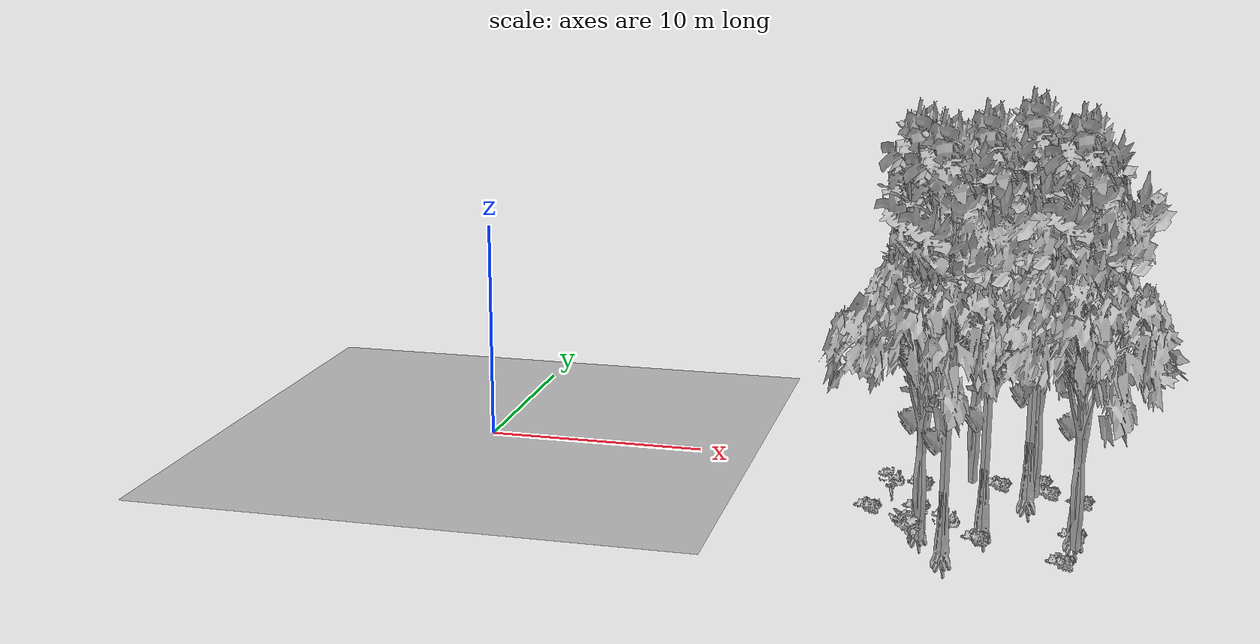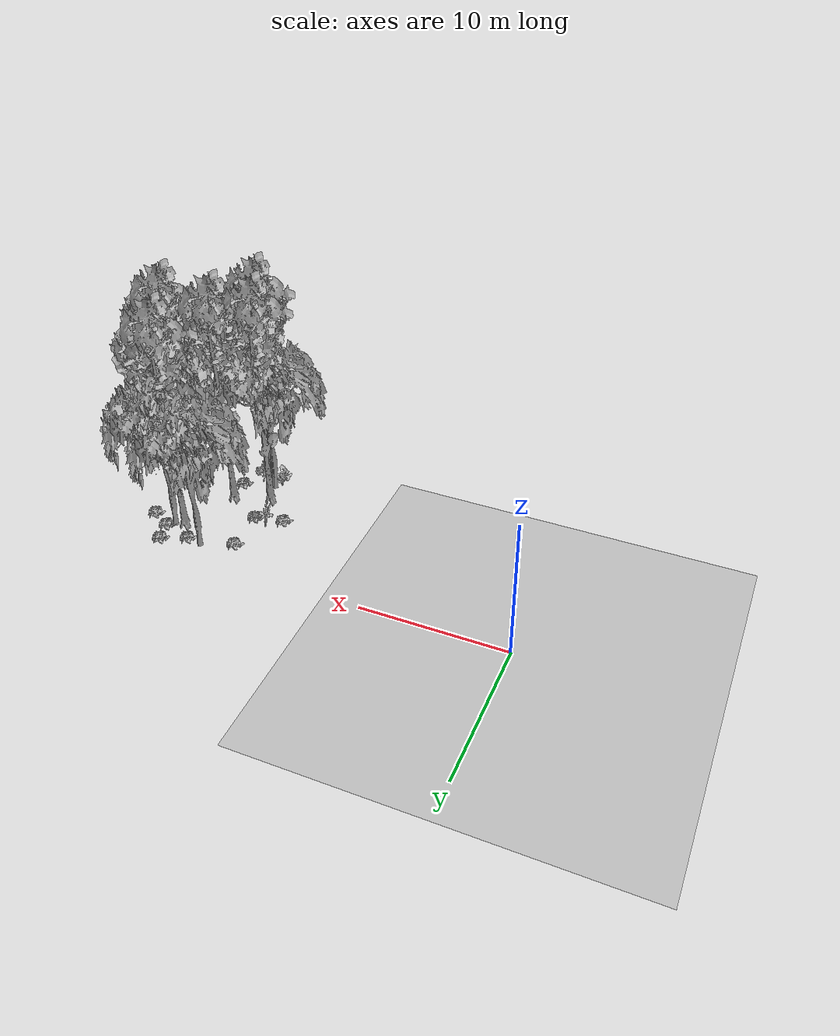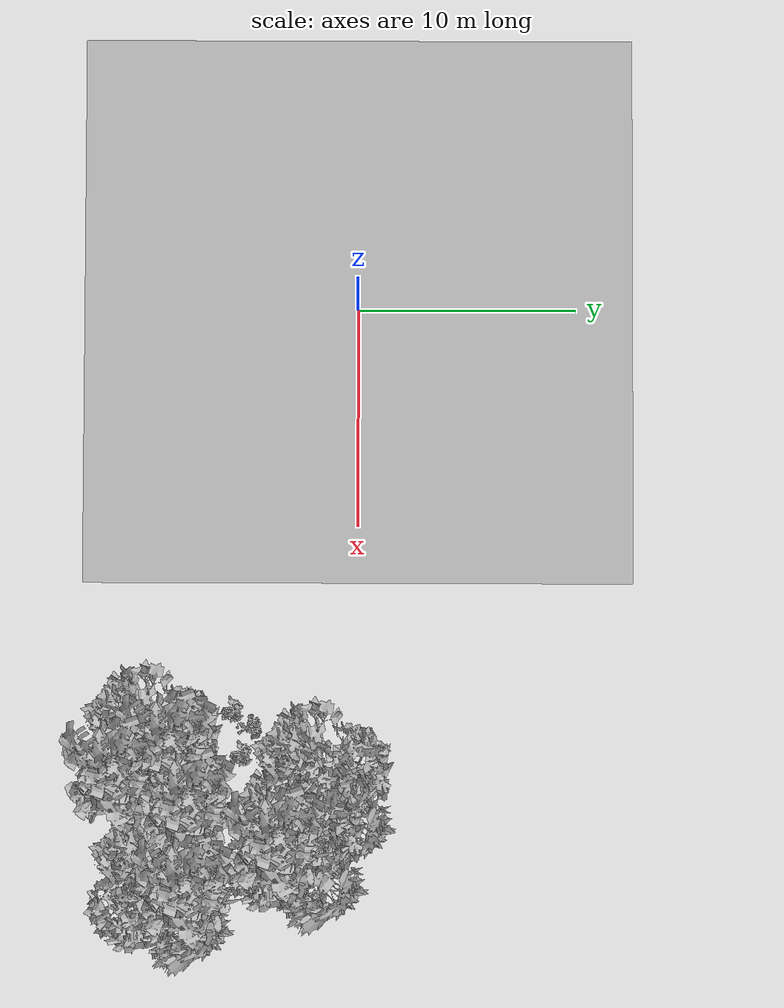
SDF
<sdf version="1.7">
 <world name="default">
  <model name="ground_plane">
   <static>1</static>
   <link name="link">
    <collision name="collision">
     <pose>-50 0 0 0 -0 0</pose>
     <geometry><plane><normal>0 0 1</normal><size>80 80</size></plane></geometry>
     <surface><contact><ode><min_depth>0.01</min_depth><max_vel>0</max_vel></ode></contact></surface>
    </collision>
    <visual name="grass">
     <cast_shadows>0</cast_shadows>
     <geometry>
      <mesh>
       <scale>0.46714285714285714 0.46714285714285714 0.1</scale>
       <uri>file://grass_plane/meshes/grass_plane.dae</uri>
      </mesh>
     </geometry>
    </visual>
   </link>
  </model>
  <model name="Tree 101">
   <static>1</static>
   <pose>20.76397999317456 -8.909783978285208 0 1.57079 -0 0</pose>
   <link name="link">
    <collision name="collision">
     <geometry><mesh><scale>3.5 5 3.5</scale><uri>model://tree_2/meshes/tree_2.obj</uri></mesh></geometry>
    </collision>
    <visual name="visual">
     <geometry><mesh><scale>3.5 5 3.5</scale><uri>model://tree_2/meshes/tree_2.obj</uri></mesh></geometry>
    </visual>
   </link>
  </model>
  <model name="Tree 170">
   <static>1</static>
   <pose>26.873225644017523 -8.503202708143984 0 1.57079 -0 0</pose>
   <link name="link">
    <collision name="collision">
     <geometry><mesh><scale>3.5 5 3.5</scale><uri>model://tree_2/meshes/tree_2.obj</uri></mesh></geometry>
    </collision>
    <visual name="visual">
     <geometry><mesh><scale>3.5 5 3.5</scale><uri>model://tree_2/meshes/tree_2.obj</uri></mesh></geometry>
    </visual>
   </link>
  </model>
  <model name="Tree 211">
   <static>1</static>
   <pose>24.861714820803876 -3.1791734787609798 0 1.57079 -0 0</pose>
   <link name="link">
    <collision name="collision">
     <geometry><mesh><scale>3.5 5 3.5</scale><uri>model://tree_9/meshes/tree_9.obj</uri></mesh></geometry>
    </collision>
    <visual name="visual">
     <geometry><mesh><scale>3.5 5 3.5</scale><uri>model://tree_9/meshes/tree_9.obj</uri></mesh></geometry>
    </visual>
   </link>
  </model>
  <model name="Tree 260">
   <static>1</static>
   <pose>26.88744289912563 -7.145883777080883 0 1.57079 -0 0</pose>
   <link name="link">
    <collision name="collision">
     <geometry><mesh><scale>3.5 5 3.5</scale><uri>model://tree_9/meshes/tree_9.obj</uri></mesh></geometry>
    </collision>
    <visual name="visual">
     <geometry><mesh><scale>3.5 5 3.5</scale><uri>model://tree_9/meshes/tree_9.obj</uri></mesh></geometry>
    </visual>
   </link>
  </model>
  <model name="Tree 284">
   <static>1</static>
   <pose>20.716394303526997 -7.858768531348872 0 1.57079 -0 0</pose>
   <link name="link">
    <collision name="collision">
     <geometry><mesh><scale>3.5 5 3.5</scale><uri>model://tree_9/meshes/tree_9.obj</uri></mesh></geometry>
    </collision>
    <visual name="visual">
     <geometry><mesh><scale>3.5 5 3.5</scale><uri>model://tree_9/meshes/tree_9.obj</uri></mesh></geometry>
    </visual>
   </link>
  </model>
  <model name="Tree 362">
   <static>1</static>
   <pose>22.37523738188448 -1.4136840905799488 0 1.57079 -0 0</pose>
   <link name="link">
    <collision name="collision">
     <geometry><mesh><scale>3.5 5 3.5</scale><uri>model://tree_2/meshes/tree_2.obj</uri></mesh></geometry>
    </collision>
    <visual name="visual">
     <geometry><mesh><scale>3.5 5 3.5</scale><uri>model://tree_2/meshes/tree_2.obj</uri></mesh></geometry>
    </visual>
   </link>
  </model>
  <model name="Tree 451">
   <static>1</static>
   <pose>23.231641278143115 -7.053732351636455 0 1.57079 -0 0</pose>
   <link name="link">
    <collision name="collision">
     <geometry><mesh><scale>3.5 5 3.5</scale><uri>model://tree_9/meshes/tree_9.obj</uri></mesh></geometry>
    </collision>
    <visual name="visual">
     <geometry><mesh><scale>3.5 5 3.5</scale><uri>model://tree_9/meshes/tree_9.obj</uri></mesh></geometry>
    </visual>
   </link>
  </model>
  <model name="Tree 507">
   <static>1</static>
   <pose>21.871376920113008 -10.265669281800989 0 1.57079 -0 0</pose>
   <link name="link">
    <collision name="collision">
     <geometry><mesh><scale>3.5 5 3.5</scale><uri>model://tree_9/meshes/tree_9.obj</uri></mesh></geometry>
    </collision>
    <visual name="visual">
     <geometry><mesh><scale>3.5 5 3.5</scale><uri>model://tree_9/meshes/tree_9.obj</uri></mesh></geometry>
    </visual>
   </link>
  </model>
  <model name="Tree 565">
   <static>1</static>
   <pose>25.06298529380898 -2.616957198731839 0 1.57079 -0 0</pose>
   <link name="link">
    <collision name="collision">
     <geometry><mesh><scale>3.5 5 3.5</scale><uri>model://tree_2/meshes/tree_2.obj</uri></mesh></geometry>
    </collision>
    <visual name="visual">
     <geometry><mesh><scale>3.5 5 3.5</scale><uri>model://tree_2/meshes/tree_2.obj</uri></mesh></geometry>
    </visual>
   </link>
  </model>
  <model name="Bush 57">
   <static>1</static>
   <pose>26.4748296447286 -10.182033933313363 0 1.57079 -0 0</pose>
   <link name="link">
    <collision name="collision">
     <geometry><mesh><scale>2 2 2</scale><uri>model://bush_2/meshes/bush_2.obj</uri></mesh></geometry>
     <surface><contact><collide_without_contact>false</collide_without_contact></contact></surface>
    </collision>
    <visual name="visual">
     <geometry><mesh><scale>2 2 2</scale><uri>model://bush_2/meshes/bush_2.obj</uri></mesh></geometry>
    </visual>
   </link>
  </model>
  <model name="Bush 145">
   <static>1</static>
   <pose>25.70719261641989 -2.322421163620099 0 1.57079 -0 0</pose>
   <link name="link">
    <collision name="collision">
     <geometry><mesh><scale>2 2 2</scale><uri>model://bush_2/meshes/bush_2.obj</uri></mesh></geometry>
     <surface><contact><collide_without_contact>false</collide_without_contact></contact></surface>
    </collision>
    <visual name="visual">
     <geometry><mesh><scale>2 2 2</scale><uri>model://bush_2/meshes/bush_2.obj</uri></mesh></geometry>
    </visual>
   </link>
  </model>
  <model name="Bush 322">
   <static>1</static>
   <pose>18.45172799314912 -5.71609053486327 0 1.57079 -0 0</pose>
   <link name="link">
    <collision name="collision">
     <geometry><mesh><scale>2 2 2</scale><uri>model://bush_2/meshes/bush_2.obj</uri></mesh></geometry>
     <surface><contact><collide_without_contact>false</collide_without_contact></contact></surface>
    </collision>
    <visual name="visual">
     <geometry><mesh><scale>2 2 2</scale><uri>model://bush_2/meshes/bush_2.obj</uri></mesh></geometry>
    </visual>
   </link>
  </model>
  <model name="Bush 393">
   <static>1</static>
   <pose>19.332346713691493 -4.680470682847819 0 1.57079 -0 0</pose>
   <link name="link">
    <collision name="collision">
     <geometry><mesh><scale>2 2 2</scale><uri>model://bush_5/meshes/bush_5.obj</uri></mesh></geometry>
     <surface><contact><collide_without_contact>false</collide_without_contact></contact></surface>
    </collision>
    <visual name="visual">
     <geometry><mesh><scale>2 2 2</scale><uri>model://bush_5/meshes/bush_5.obj</uri></mesh></geometry>
    </visual>
   </link>
  </model>
  <model name="Bush 490">
   <static>1</static>
   <pose>25.331582008489022 -0.9758156003628997 0 1.57079 -0 0</pose>
   <link name="link">
    <collision name="collision">
     <geometry><mesh><scale>2 2 2</scale><uri>model://bush_2/meshes/bush_2.obj</uri></mesh></geometry>
     <surface><contact><collide_without_contact>false</collide_without_contact></contact></surface>
    </collision>
    <visual name="visual">
     <geometry><mesh><scale>2 2 2</scale><uri>model://bush_2/meshes/bush_2.obj</uri></mesh></geometry>
    </visual>
   </link>
  </model>
  <model name="Bush 491">
   <static>1</static>
   <pose>27.12504226146268 -3.1476758408417638 0 1.57079 -0 0</pose>
   <link name="link">
    <collision name="collision">
     <geometry><mesh><scale>2 2 2</scale><uri>model://bush_2/meshes/bush_2.obj</uri></mesh></geometry>
     <surface><contact><collide_without_contact>false</collide_without_contact></contact></surface>
    </collision>
    <visual name="visual">
     <geometry><mesh><scale>2 2 2</scale><uri>model://bush_2/meshes/bush_2.obj</uri></mesh></geometry>
    </visual>
   </link>
  </model>
  <model name="Bush 505">
   <static>1</static>
   <pose>20.45819438103507 -5.309931771664935 0 1.57079 -0 0</pose>
   <link name="link">
    <collision name="collision">
     <geometry><mesh><scale>2 2 2</scale><uri>model://bush_2/meshes/bush_2.obj</uri></mesh></geometry>
     <surface><contact><collide_without_contact>false</collide_without_contact></contact></surface>
    </collision>
    <visual name="visual">
     <geometry><mesh><scale>2 2 2</scale><uri>model://bush_2/meshes/bush_2.obj</uri></mesh></geometry>
    </visual>
   </link>
  </model>
  <model name="Bush 532">
   <static>1</static>
   <pose>20.337028572637763 -2.3027462872708426 0 1.57079 -0 0</pose>
   <link name="link">
    <collision name="collision">
     <geometry><mesh><scale>2 2 2</scale><uri>model://bush_2/meshes/bush_2.obj</uri></mesh></geometry>
     <surface><contact><collide_without_contact>false</collide_without_contact></contact></surface>
    </collision>
    <visual name="visual">
     <geometry><mesh><scale>2 2 2</scale><uri>model://bush_2/meshes/bush_2.obj</uri></mesh></geometry>
    </visual>
   </link>
  </model>
  <model name="Bush 576">
   <static>1</static>
   <pose>23.09911647644705 -8.377003394209417 0 1.57079 -0 0</pose>
   <link name="link">
    <collision name="collision">
     <geometry><mesh><scale>2 2 2</scale><uri>model://bush_2/meshes/bush_2.obj</uri></mesh></geometry>
     <surface><contact><collide_without_contact>false</collide_without_contact></contact></surface>
    </collision>
    <visual name="visual">
     <geometry><mesh><scale>2 2 2</scale><uri>model://bush_2/meshes/bush_2.obj</uri></mesh></geometry>
    </visual>
   </link>
  </model>
  <model name="Bush 601">
   <static>1</static>
   <pose>20.498997063133487 -9.230761062473967 0 1.57079 -0 0</pose>
   <link name="link">
    <collision name="collision">
     <geometry><mesh><scale>2 2 2</scale><uri>model://bush_0/meshes/bush_0.obj</uri></mesh></geometry>
     <surface><contact><collide_without_contact>false</collide_without_contact></contact></surface>
    </collision>
    <visual name="visual">
     <geometry><mesh><scale>2 2 2</scale><uri>model://bush_0/meshes/bush_0.obj</uri></mesh></geometry>
    </visual>
   </link>
  </model>
  <model name="Bush 609">
   <static>1</static>
   <pose>23.610595118514773 -1.6956848395423947 0 1.57079 -0 0</pose>
   <link name="link">
    <collision name="collision">
     <geometry><mesh><scale>2 2 2</scale><uri>model://bush_2/meshes/bush_2.obj</uri></mesh></geometry>
     <surface><contact><collide_without_contact>false</collide_without_contact></contact></surface>
    </collision>
    <visual name="visual">
     <geometry><mesh><scale>2 2 2</scale><uri>model://bush_2/meshes/bush_2.obj</uri></mesh></geometry>
    </visual>
   </link>
  </model>
  <model name="Bush 614">
   <static>1</static>
   <pose>21.968145935951277 -9.076321330146222 0 1.57079 -0 0</pose>
   <link name="link">
    <collision name="collision">
     <geometry><mesh><scale>2 2 2</scale><uri>model://bush_5/meshes/bush_5.obj</uri></mesh></geometry>
     <surface><contact><collide_without_contact>false</collide_without_contact></contact></surface>
    </collision>
    <visual name="visual">
     <geometry><mesh><scale>2 2 2</scale><uri>model://bush_5/meshes/bush_5.obj</uri></mesh></geometry>
    </visual>
   </link>
  </model>
  <model name="Bush 632">
   <static>1</static>
   <pose>26.860547479151677 -7.179682767156578 0 1.57079 -0 0</pose>
   <link name="link">
    <collision name="collision">
     <geometry><mesh><scale>2 2 2</scale><uri>model://bush_2/meshes/bush_2.obj</uri></mesh></geometry>
     <surface><contact><collide_without_contact>false</collide_without_contact></contact></surface>
    </collision>
    <visual name="visual">
     <geometry><mesh><scale>2 2 2</scale><uri>model://bush_2/meshes/bush_2.obj</uri></mesh></geometry>
    </visual>
   </link>
  </model>
 </world>
</sdf>
